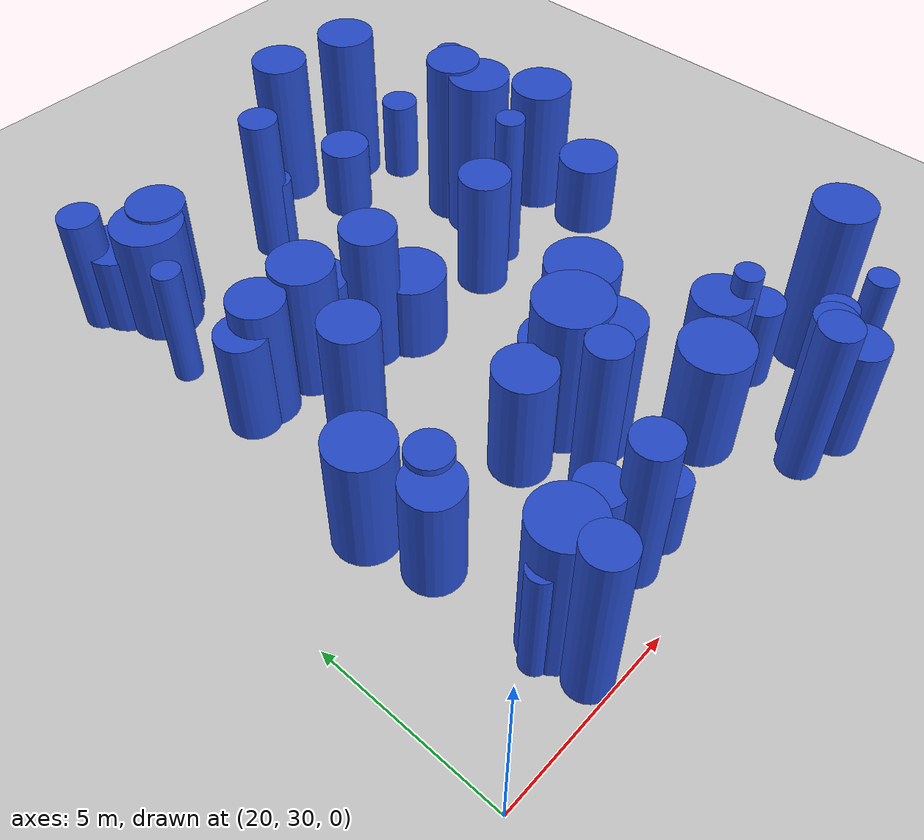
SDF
<sdf version="1.6">
 <world name="default">
  <model name="ground_plane">
   <static>1</static>
   <link name="link">
    <collision name="collision">
     <geometry><plane><normal>0 0 1</normal><size>100 100</size></plane></geometry>
     <surface><friction><ode><mu>100</mu><mu2>50</mu2></ode></friction></surface>
    </collision>
    <visual name="visual">
     <cast_shadows>0</cast_shadows>
     <geometry><plane><normal>0 0 1</normal><size>100 100</size></plane></geometry>
     <material>
      <script><uri>file://media/materials/scripts/gazebo.material</uri><name>Gazebo/Grey</name></script>
     </material>
    </visual>
   </link>
  </model>
  <model name="9">
   <static>0</static>
   <link name="link">
    <inertial>
     <mass>2</mass>
     <inertia><ixx>2.17214</ixx><ixy>0</ixy><ixz>0</ixz><iyy>2.17214</iyy><iyz>0</iyz><izz>0.825516</izz></inertia>
    </inertial>
    <collision name="collision">
     <geometry><cylinder><length>3.24904</length><radius>0.908579</radius></cylinder></geometry>
     <surface><contact><collide_without_contact>1</collide_without_contact></contact></surface>
    </collision>
    <visual name="visual">
     <geometry><cylinder><length>3.24904</length><radius>0.908579</radius></cylinder></geometry>
     <material>
      <script><uri>file://media/materials/scripts/gazebo.material</uri><name>Gazebo/Blue</name></script>
     </material>
    </visual>
    <gravity>0</gravity>
   </link>
   <pose>30.0928 32.4885 1.62452 0 -0 0</pose>
  </model>
  <model name="17">
   <static>0</static>
   <link name="link">
    <inertial>
     <mass>2</mass>
     <inertia><ixx>2.21319</ixx><ixy>0</ixy><ixz>0</ixz><iyy>2.21319</iyy><iyz>0</iyz><izz>0.160005</izz></inertia>
    </inertial>
    <collision name="collision">
     <geometry><cylinder><length>3.57759</length><radius>0.400007</radius></cylinder></geometry>
     <surface><contact><collide_without_contact>1</collide_without_contact></contact></surface>
    </collision>
    <visual name="visual">
     <geometry><cylinder><length>3.57759</length><radius>0.400007</radius></cylinder></geometry>
     <material>
      <script><uri>file://media/materials/scripts/gazebo.material</uri><name>Gazebo/Blue</name></script>
     </material>
    </visual>
    <gravity>0</gravity>
   </link>
   <pose>34.8299 44.982 1.78879 0 -0 0</pose>
  </model>
  <model name="32">
   <static>0</static>
   <link name="link">
    <inertial>
     <mass>2</mass>
     <inertia><ixx>3.68543</ixx><ixy>0</ixy><ixz>0</ixz><iyy>3.68543</iyy><iyz>0</iyz><izz>0.263178</izz></inertia>
    </inertial>
    <collision name="collision">
     <geometry><cylinder><length>4.61769</length><radius>0.513009</radius></cylinder></geometry>
     <surface><contact><collide_without_contact>1</collide_without_contact></contact></surface>
    </collision>
    <visual name="visual">
     <geometry><cylinder><length>4.61769</length><radius>0.513009</radius></cylinder></geometry>
     <material>
      <script><uri>file://media/materials/scripts/gazebo.material</uri><name>Gazebo/Blue</name></script>
     </material>
    </visual>
    <gravity>0</gravity>
   </link>
   <pose>31.0444 30.2874 2.30884 0 -0 0</pose>
  </model>
  <model name="36">
   <static>0</static>
   <link name="link">
    <inertial>
     <mass>2</mass>
     <inertia><ixx>1.95658</ixx><ixy>0</ixy><ixz>0</ixz><iyy>1.95658</iyy><iyz>0</iyz><izz>0.315427</izz></inertia>
    </inertial>
    <collision name="collision">
     <geometry><cylinder><length>3.2853</length><radius>0.561629</radius></cylinder></geometry>
     <surface><contact><collide_without_contact>1</collide_without_contact></contact></surface>
    </collision>
    <visual name="visual">
     <geometry><cylinder><length>3.2853</length><radius>0.561629</radius></cylinder></geometry>
     <material>
      <script><uri>file://media/materials/scripts/gazebo.material</uri><name>Gazebo/Blue</name></script>
     </material>
    </visual>
    <gravity>0</gravity>
   </link>
   <pose>23.5459 35.1984 1.64265 0 -0 0</pose>
  </model>
  <model name="41">
   <static>0</static>
   <link name="link">
    <inertial>
     <mass>2</mass>
     <inertia><ixx>1.76334</ixx><ixy>0</ixy><ixz>0</ixz><iyy>1.76334</iyy><iyz>0</iyz><izz>0.124496</izz></inertia>
    </inertial>
    <collision name="collision">
     <geometry><cylinder><length>3.19477</length><radius>0.352839</radius></cylinder></geometry>
     <surface><contact><collide_without_contact>1</collide_without_contact></contact></surface>
    </collision>
    <visual name="visual">
     <geometry><cylinder><length>3.19477</length><radius>0.352839</radius></cylinder></geometry>
     <material>
      <script><uri>file://media/materials/scripts/gazebo.material</uri><name>Gazebo/Blue</name></script>
     </material>
    </visual>
    <gravity>0</gravity>
   </link>
   <pose>23.6952 31.2859 1.59739 0 -0 0</pose>
  </model>
  <model name="47">
   <static>0</static>
   <link name="link">
    <inertial>
     <mass>2</mass>
     <inertia><ixx>3.56288</ixx><ixy>0</ixy><ixz>0</ixz><iyy>3.56288</iyy><iyz>0</iyz><izz>0.679619</izz></inertia>
    </inertial>
    <collision name="collision">
     <geometry><cylinder><length>4.39755</length><radius>0.82439</radius></cylinder></geometry>
     <surface><contact><collide_without_contact>1</collide_without_contact></contact></surface>
    </collision>
    <visual name="visual">
     <geometry><cylinder><length>4.39755</length><radius>0.82439</radius></cylinder></geometry>
     <material>
      <script><uri>file://media/materials/scripts/gazebo.material</uri><name>Gazebo/Blue</name></script>
     </material>
    </visual>
    <gravity>0</gravity>
   </link>
   <pose>23.4584 31.6278 2.19877 0 -0 0</pose>
  </model>
  <model name="53">
   <static>0</static>
   <link name="link">
    <inertial>
     <mass>2</mass>
     <inertia><ixx>2.77457</ixx><ixy>0</ixy><ixz>0</ixz><iyy>2.77457</iyy><iyz>0</iyz><izz>0.892205</izz></inertia>
    </inertial>
    <collision name="collision">
     <geometry><cylinder><length>3.73775</length><radius>0.944566</radius></cylinder></geometry>
     <surface><contact><collide_without_contact>1</collide_without_contact></contact></surface>
    </collision>
    <visual name="visual">
     <geometry><cylinder><length>3.73775</length><radius>0.944566</radius></cylinder></geometry>
     <material>
      <script><uri>file://media/materials/scripts/gazebo.material</uri><name>Gazebo/Blue</name></script>
     </material>
    </visual>
    <gravity>0</gravity>
   </link>
   <pose>29.7969 36.1188 1.86888 0 -0 0</pose>
  </model>
  <model name="55">
   <static>0</static>
   <link name="link">
    <inertial>
     <mass>2</mass>
     <inertia><ixx>2.46445</ixx><ixy>0</ixy><ixz>0</ixz><iyy>2.46445</iyy><iyz>0</iyz><izz>0.129583</izz></inertia>
    </inertial>
    <collision name="collision">
     <geometry><cylinder><length>3.79446</length><radius>0.359977</radius></cylinder></geometry>
     <surface><contact><collide_without_contact>1</collide_without_contact></contact></surface>
    </collision>
    <visual name="visual">
     <geometry><cylinder><length>3.79446</length><radius>0.359977</radius></cylinder></geometry>
     <material>
      <script><uri>file://media/materials/scripts/gazebo.material</uri><name>Gazebo/Blue</name></script>
     </material>
    </visual>
    <gravity>0</gravity>
   </link>
   <pose>32.0939 33.0185 1.89723 0 -0 0</pose>
  </model>
  <model name="71">
   <static>0</static>
   <link name="link">
    <inertial>
     <mass>2</mass>
     <inertia><ixx>1.25615</ixx><ixy>0</ixy><ixz>0</ixz><iyy>1.25615</iyy><iyz>0</iyz><izz>0.836986</izz></inertia>
    </inertial>
    <collision name="collision">
     <geometry><cylinder><length>2.24185</length><radius>0.914869</radius></cylinder></geometry>
     <surface><contact><collide_without_contact>1</collide_without_contact></contact></surface>
    </collision>
    <visual name="visual">
     <geometry><cylinder><length>2.24185</length><radius>0.914869</radius></cylinder></geometry>
     <material>
      <script><uri>file://media/materials/scripts/gazebo.material</uri><name>Gazebo/Blue</name></script>
     </material>
    </visual>
    <gravity>0</gravity>
   </link>
   <pose>28.0409 40.0976 1.12093 0 -0 0</pose>
  </model>
  <model name="77">
   <static>0</static>
   <link name="link">
    <inertial>
     <mass>2</mass>
     <inertia><ixx>1.8782</ixx><ixy>0</ixy><ixz>0</ixz><iyy>1.8782</iyy><iyz>0</iyz><izz>0.551457</izz></inertia>
    </inertial>
    <collision name="collision">
     <geometry><cylinder><length>3.10077</length><radius>0.742602</radius></cylinder></geometry>
     <surface><contact><collide_without_contact>1</collide_without_contact></contact></surface>
    </collision>
    <visual name="visual">
     <geometry><cylinder><length>3.10077</length><radius>0.742602</radius></cylinder></geometry>
     <material>
      <script><uri>file://media/materials/scripts/gazebo.material</uri><name>Gazebo/Blue</name></script>
     </material>
    </visual>
    <gravity>0</gravity>
   </link>
   <pose>23.0701 34.6715 1.55039 0 -0 0</pose>
  </model>
  <model name="88">
   <static>0</static>
   <link name="link">
    <inertial>
     <mass>2</mass>
     <inertia><ixx>1.25112</ixx><ixy>0</ixy><ixz>0</ixz><iyy>1.25112</iyy><iyz>0</iyz><izz>0.64833</izz></inertia>
    </inertial>
    <collision name="collision">
     <geometry><cylinder><length>2.35833</length><radius>0.805189</radius></cylinder></geometry>
     <surface><contact><collide_without_contact>1</collide_without_contact></contact></surface>
    </collision>
    <visual name="visual">
     <geometry><cylinder><length>2.35833</length><radius>0.805189</radius></cylinder></geometry>
     <material>
      <script><uri>file://media/materials/scripts/gazebo.material</uri><name>Gazebo/Blue</name></script>
     </material>
    </visual>
    <gravity>0</gravity>
   </link>
   <pose>29.3432 35.7119 1.17916 0 -0 0</pose>
  </model>
  <model name="94">
   <static>0</static>
   <link name="link">
    <inertial>
     <mass>2</mass>
     <inertia>
      <ixx>2.38254</ixx>
      <ixy>0</ixy>
      <ixz>0</ixz>
      <iyy>2.38254</iyy>
      <iyz>0</iyz>
      <izz>0.0875542</izz>
     </inertia>
    </inertial>
    <collision name="collision">
     <geometry><cylinder><length>3.74601</length><radius>0.295896</radius></cylinder></geometry>
     <surface><contact><collide_without_contact>1</collide_without_contact></contact></surface>
    </collision>
    <visual name="visual">
     <geometry><cylinder><length>3.74601</length><radius>0.295896</radius></cylinder></geometry>
     <material>
      <script><uri>file://media/materials/scripts/gazebo.material</uri><name>Gazebo/Blue</name></script>
     </material>
    </visual>
    <gravity>0</gravity>
   </link>
   <pose>32.8739 46.9525 1.87301 0 -0 0</pose>
  </model>
  <model name="101">
   <static>0</static>
   <link name="link">
    <inertial>
     <mass>2</mass>
     <inertia>
      <ixx>0.990845</ixx>
      <ixy>0</ixy>
      <ixz>0</ixz>
      <iyy>0.990845</iyy>
      <iyz>0</iyz>
      <izz>0.469471</izz>
     </inertia>
    </inertial>
    <collision name="collision">
     <geometry><cylinder><length>2.12994</length><radius>0.68518</radius></cylinder></geometry>
     <surface><contact><collide_without_contact>1</collide_without_contact></contact></surface>
    </collision>
    <visual name="visual">
     <geometry><cylinder><length>2.12994</length><radius>0.68518</radius></cylinder></geometry>
     <material>
      <script><uri>file://media/materials/scripts/gazebo.material</uri><name>Gazebo/Blue</name></script>
     </material>
    </visual>
    <gravity>0</gravity>
   </link>
   <pose>30.7646 45.382 1.06497 0 -0 0</pose>
  </model>
  <model name="122">
   <static>0</static>
   <link name="link">
    <inertial>
     <mass>2</mass>
     <inertia><ixx>0.85917</ixx><ixy>0</ixy><ixz>0</ixz><iyy>0.85917</iyy><iyz>0</iyz><izz>0.253446</izz></inertia>
    </inertial>
    <collision name="collision">
     <geometry><cylinder><length>2.09635</length><radius>0.503434</radius></cylinder></geometry>
     <surface><contact><collide_without_contact>1</collide_without_contact></contact></surface>
    </collision>
    <visual name="visual">
     <geometry><cylinder><length>2.09635</length><radius>0.503434</radius></cylinder></geometry>
     <material>
      <script><uri>file://media/materials/scripts/gazebo.material</uri><name>Gazebo/Blue</name></script>
     </material>
    </visual>
    <gravity>0</gravity>
   </link>
   <pose>27.112 31.4835 1.04817 0 -0 0</pose>
  </model>
  <model name="128">
   <static>0</static>
   <link name="link">
    <inertial>
     <mass>2</mass>
     <inertia><ixx>3.73478</ixx><ixy>0</ixy><ixz>0</ixz><iyy>3.73478</iyy><iyz>0</iyz><izz>0.491925</izz></inertia>
    </inertial>
    <collision name="collision">
     <geometry><cylinder><length>4.57525</length><radius>0.701374</radius></cylinder></geometry>
     <surface><contact><collide_without_contact>1</collide_without_contact></contact></surface>
    </collision>
    <visual name="visual">
     <geometry><cylinder><length>4.57525</length><radius>0.701374</radius></cylinder></geometry>
     <material>
      <script><uri>file://media/materials/scripts/gazebo.material</uri><name>Gazebo/Blue</name></script>
     </material>
    </visual>
    <gravity>0</gravity>
   </link>
   <pose>24.164 38.1173 2.28762 0 -0 0</pose>
  </model>
  <model name="157">
   <static>0</static>
   <link name="link">
    <inertial>
     <mass>2</mass>
     <inertia><ixx>1.63725</ixx><ixy>0</ixy><ixz>0</ixz><iyy>1.63725</iyy><iyz>0</iyz><izz>0.375015</izz></inertia>
    </inertial>
    <collision name="collision">
     <geometry><cylinder><length>2.94932</length><radius>0.612385</radius></cylinder></geometry>
     <surface><contact><collide_without_contact>1</collide_without_contact></contact></surface>
    </collision>
    <visual name="visual">
     <geometry><cylinder><length>2.94932</length><radius>0.612385</radius></cylinder></geometry>
     <material>
      <script><uri>file://media/materials/scripts/gazebo.material</uri><name>Gazebo/Blue</name></script>
     </material>
    </visual>
    <gravity>0</gravity>
   </link>
   <pose>25.42 32.1685 1.47466 0 -0 0</pose>
  </model>
  <model name="172">
   <static>0</static>
   <link name="link">
    <inertial>
     <mass>2</mass>
     <inertia><ixx>2.75287</ixx><ixy>0</ixy><ixz>0</ixz><iyy>2.75287</iyy><iyz>0</iyz><izz>0.722519</izz></inertia>
    </inertial>
    <collision name="collision">
     <geometry><cylinder><length>3.78809</length><radius>0.850011</radius></cylinder></geometry>
     <surface><contact><collide_without_contact>1</collide_without_contact></contact></surface>
    </collision>
    <visual name="visual">
     <geometry><cylinder><length>3.78809</length><radius>0.850011</radius></cylinder></geometry>
     <material>
      <script><uri>file://media/materials/scripts/gazebo.material</uri><name>Gazebo/Blue</name></script>
     </material>
    </visual>
    <gravity>0</gravity>
   </link>
   <pose>34.9871 41.6125 1.89405 0 -0 0</pose>
  </model>
  <model name="175">
   <static>0</static>
   <link name="link">
    <inertial>
     <mass>2</mass>
     <inertia><ixx>2.14915</ixx><ixy>0</ixy><ixz>0</ixz><iyy>2.14915</iyy><iyz>0</iyz><izz>0.591369</izz></inertia>
    </inertial>
    <collision name="collision">
     <geometry><cylinder><length>3.33479</length><radius>0.769005</radius></cylinder></geometry>
     <surface><contact><collide_without_contact>1</collide_without_contact></contact></surface>
    </collision>
    <visual name="visual">
     <geometry><cylinder><length>3.33479</length><radius>0.769005</radius></cylinder></geometry>
     <material>
      <script><uri>file://media/materials/scripts/gazebo.material</uri><name>Gazebo/Blue</name></script>
     </material>
    </visual>
    <gravity>0</gravity>
   </link>
   <pose>24.633 45.8262 1.66739 0 -0 0</pose>
  </model>
  <model name="178">
   <static>0</static>
   <link name="link">
    <inertial>
     <mass>2</mass>
     <inertia><ixx>3.45321</ixx><ixy>0</ixy><ixz>0</ixz><iyy>3.45321</iyy><iyz>0</iyz><izz>0.929013</izz></inertia>
    </inertial>
    <collision name="collision">
     <geometry><cylinder><length>4.23465</length><radius>0.963853</radius></cylinder></geometry>
     <surface><contact><collide_without_contact>1</collide_without_contact></contact></surface>
    </collision>
    <visual name="visual">
     <geometry><cylinder><length>4.23465</length><radius>0.963853</radius></cylinder></geometry>
     <material>
      <script><uri>file://media/materials/scripts/gazebo.material</uri><name>Gazebo/Blue</name></script>
     </material>
    </visual>
    <gravity>0</gravity>
   </link>
   <pose>28.2389 35.2166 2.11732 0 -0 0</pose>
  </model>
  <model name="202">
   <static>0</static>
   <link name="link">
    <inertial>
     <mass>2</mass>
     <inertia><ixx>3.10348</ixx><ixy>0</ixy><ixz>0</ixz><iyy>3.10348</iyy><iyz>0</iyz><izz>0.510542</izz></inertia>
    </inertial>
    <collision name="collision">
     <geometry><cylinder><length>4.13391</length><radius>0.714522</radius></cylinder></geometry>
     <surface><contact><collide_without_contact>1</collide_without_contact></contact></surface>
    </collision>
    <visual name="visual">
     <geometry><cylinder><length>4.13391</length><radius>0.714522</radius></cylinder></geometry>
     <material>
      <script><uri>file://media/materials/scripts/gazebo.material</uri><name>Gazebo/Blue</name></script>
     </material>
    </visual>
    <gravity>0</gravity>
   </link>
   <pose>26.9826 40.4433 2.06696 0 -0 0</pose>
  </model>
  <model name="203">
   <static>0</static>
   <link name="link">
    <inertial>
     <mass>2</mass>
     <inertia><ixx>2.72551</ixx><ixy>0</ixy><ixz>0</ixz><iyy>2.72551</iyy><iyz>0</iyz><izz>0.670454</izz></inertia>
    </inertial>
    <collision name="collision">
     <geometry><cylinder><length>3.78705</length><radius>0.818813</radius></cylinder></geometry>
     <surface><contact><collide_without_contact>1</collide_without_contact></contact></surface>
    </collision>
    <visual name="visual">
     <geometry><cylinder><length>3.78705</length><radius>0.818813</radius></cylinder></geometry>
     <material>
      <script><uri>file://media/materials/scripts/gazebo.material</uri><name>Gazebo/Blue</name></script>
     </material>
    </visual>
    <gravity>0</gravity>
   </link>
   <pose>25.2855 40.9859 1.89352 0 -0 0</pose>
  </model>
  <model name="205">
   <static>0</static>
   <link name="link">
    <inertial>
     <mass>2</mass>
     <inertia><ixx>1.55831</ixx><ixy>0</ixy><ixz>0</ixz><iyy>1.55831</iyy><iyz>0</iyz><izz>0.533917</izz></inertia>
    </inertial>
    <collision name="collision">
     <geometry><cylinder><length>2.78354</length><radius>0.730696</radius></cylinder></geometry>
     <surface><contact><collide_without_contact>1</collide_without_contact></contact></surface>
    </collision>
    <visual name="visual">
     <geometry><cylinder><length>2.78354</length><radius>0.730696</radius></cylinder></geometry>
     <material>
      <script><uri>file://media/materials/scripts/gazebo.material</uri><name>Gazebo/Blue</name></script>
     </material>
    </visual>
    <gravity>0</gravity>
   </link>
   <pose>25.9609 41.1948 1.39177 0 -0 0</pose>
  </model>
  <model name="209">
   <static>0</static>
   <link name="link">
    <inertial>
     <mass>2</mass>
     <inertia><ixx>0.71511</ixx><ixy>0</ixy><ixz>0</ixz><iyy>0.71511</iyy><iyz>0</iyz><izz>0.086054</izz></inertia>
    </inertial>
    <collision name="collision">
     <geometry><cylinder><length>2.00811</length><radius>0.29335</radius></cylinder></geometry>
     <surface><contact><collide_without_contact>1</collide_without_contact></contact></surface>
    </collision>
    <visual name="visual">
     <geometry><cylinder><length>2.00811</length><radius>0.29335</radius></cylinder></geometry>
     <material>
      <script><uri>file://media/materials/scripts/gazebo.material</uri><name>Gazebo/Blue</name></script>
     </material>
    </visual>
    <gravity>0</gravity>
   </link>
   <pose>34.8444 44.496 1.00405 0 -0 0</pose>
  </model>
  <model name="217">
   <static>0</static>
   <link name="link">
    <inertial>
     <mass>2</mass>
     <inertia><ixx>4.38609</ixx><ixy>0</ixy><ixz>0</ixz><iyy>4.38609</iyy><iyz>0</iyz><izz>0.511184</izz></inertia>
    </inertial>
    <collision name="collision">
     <geometry><cylinder><length>4.97825</length><radius>0.714971</radius></cylinder></geometry>
     <surface><contact><collide_without_contact>1</collide_without_contact></contact></surface>
    </collision>
    <visual name="visual">
     <geometry><cylinder><length>4.97825</length><radius>0.714971</radius></cylinder></geometry>
     <material>
      <script><uri>file://media/materials/scripts/gazebo.material</uri><name>Gazebo/Blue</name></script>
     </material>
    </visual>
    <gravity>0</gravity>
   </link>
   <pose>32.816 43.0186 2.48913 0 -0 0</pose>
  </model>
  <model name="234">
   <static>0</static>
   <link name="link">
    <inertial>
     <mass>2</mass>
     <inertia><ixx>3.28474</ixx><ixy>0</ixy><ixz>0</ixz><iyy>3.28474</iyy><iyz>0</iyz><izz>0.269996</izz></inertia>
    </inertial>
    <collision name="collision">
     <geometry><cylinder><length>4.34723</length><radius>0.519611</radius></cylinder></geometry>
     <surface><contact><collide_without_contact>1</collide_without_contact></contact></surface>
    </collision>
    <visual name="visual">
     <geometry><cylinder><length>4.34723</length><radius>0.519611</radius></cylinder></geometry>
     <material>
      <script><uri>file://media/materials/scripts/gazebo.material</uri><name>Gazebo/Blue</name></script>
     </material>
    </visual>
    <gravity>0</gravity>
   </link>
   <pose>27.9701 45.538 2.17362 0 -0 0</pose>
  </model>
  <model name="264">
   <static>0</static>
   <link name="link">
    <inertial>
     <mass>2</mass>
     <inertia><ixx>3.14359</ixx><ixy>0</ixy><ixz>0</ixz><iyy>3.14359</iyy><iyz>0</iyz><izz>0.609297</izz></inertia>
    </inertial>
    <collision name="collision">
     <geometry><cylinder><length>4.12718</length><radius>0.780575</radius></cylinder></geometry>
     <surface><contact><collide_without_contact>1</collide_without_contact></contact></surface>
    </collision>
    <visual name="visual">
     <geometry><cylinder><length>4.12718</length><radius>0.780575</radius></cylinder></geometry>
     <material>
      <script><uri>file://media/materials/scripts/gazebo.material</uri><name>Gazebo/Blue</name></script>
     </material>
    </visual>
    <gravity>0</gravity>
   </link>
   <pose>28.4073 34.23 2.06359 0 -0 0</pose>
  </model>
  <model name="272">
   <static>0</static>
   <link name="link">
    <inertial>
     <mass>2</mass>
     <inertia><ixx>1.13346</ixx><ixy>0</ixy><ixz>0</ixz><iyy>1.13346</iyy><iyz>0</iyz><izz>0.697418</izz></inertia>
    </inertial>
    <collision name="collision">
     <geometry><cylinder><length>2.16991</length><radius>0.835115</radius></cylinder></geometry>
     <surface><contact><collide_without_contact>1</collide_without_contact></contact></surface>
    </collision>
    <visual name="visual">
     <geometry><cylinder><length>2.16991</length><radius>0.835115</radius></cylinder></geometry>
     <material>
      <script><uri>file://media/materials/scripts/gazebo.material</uri><name>Gazebo/Blue</name></script>
     </material>
    </visual>
    <gravity>0</gravity>
   </link>
   <pose>35.0149 39.7969 1.08495 0 -0 0</pose>
  </model>
  <model name="273">
   <static>0</static>
   <link name="link">
    <inertial>
     <mass>2</mass>
     <inertia><ixx>2.21963</ixx><ixy>0</ixy><ixz>0</ixz><iyy>2.21963</iyy><iyz>0</iyz><izz>0.688123</izz></inertia>
    </inertial>
    <collision name="collision">
     <geometry><cylinder><length>3.35461</length><radius>0.829532</radius></cylinder></geometry>
     <surface><contact><collide_without_contact>1</collide_without_contact></contact></surface>
    </collision>
    <visual name="visual">
     <geometry><cylinder><length>3.35461</length><radius>0.829532</radius></cylinder></geometry>
     <material>
      <script><uri>file://media/materials/scripts/gazebo.material</uri><name>Gazebo/Blue</name></script>
     </material>
    </visual>
    <gravity>0</gravity>
   </link>
   <pose>22.6849 36.378 1.67731 0 -0 0</pose>
  </model>
  <model name="296">
   <static>0</static>
   <link name="link">
    <inertial>
     <mass>2</mass>
     <inertia><ixx>3.60598</ixx><ixy>0</ixy><ixz>0</ixz><iyy>3.60598</iyy><iyz>0</iyz><izz>0.150347</izz></inertia>
    </inertial>
    <collision name="collision">
     <geometry><cylinder><length>4.6027</length><radius>0.387746</radius></cylinder></geometry>
     <surface><contact><collide_without_contact>1</collide_without_contact></contact></surface>
    </collision>
    <visual name="visual">
     <geometry><cylinder><length>4.6027</length><radius>0.387746</radius></cylinder></geometry>
     <material>
      <script><uri>file://media/materials/scripts/gazebo.material</uri><name>Gazebo/Blue</name></script>
     </material>
    </visual>
    <gravity>0</gravity>
   </link>
   <pose>32.1855 40.4181 2.30135 0 -0 0</pose>
  </model>
  <model name="315">
   <static>0</static>
   <link name="link">
    <inertial>
     <mass>2</mass>
     <inertia><ixx>2.10453</ixx><ixy>0</ixy><ixz>0</ixz><iyy>2.10453</iyy><iyz>0</iyz><izz>0.607323</izz></inertia>
    </inertial>
    <collision name="collision">
     <geometry><cylinder><length>3.28713</length><radius>0.77931</radius></cylinder></geometry>
     <surface><contact><collide_without_contact>1</collide_without_contact></contact></surface>
    </collision>
    <visual name="visual">
     <geometry><cylinder><length>3.28713</length><radius>0.77931</radius></cylinder></geometry>
     <material>
      <script><uri>file://media/materials/scripts/gazebo.material</uri><name>Gazebo/Blue</name></script>
     </material>
    </visual>
    <gravity>0</gravity>
   </link>
   <pose>26.62 35.1973 1.64356 0 -0 0</pose>
  </model>
  <model name="323">
   <static>0</static>
   <link name="link">
    <inertial>
     <mass>2</mass>
     <inertia><ixx>1.1847</ixx><ixy>0</ixy><ixz>0</ixz><iyy>1.1847</iyy><iyz>0</iyz><izz>0.309535</izz></inertia>
    </inertial>
    <collision name="collision">
     <geometry><cylinder><length>2.48587</length><radius>0.556359</radius></cylinder></geometry>
     <surface><contact><collide_without_contact>1</collide_without_contact></contact></surface>
    </collision>
    <visual name="visual">
     <geometry><cylinder><length>2.48587</length><radius>0.556359</radius></cylinder></geometry>
     <material>
      <script><uri>file://media/materials/scripts/gazebo.material</uri><name>Gazebo/Blue</name></script>
     </material>
    </visual>
    <gravity>0</gravity>
   </link>
   <pose>32.8163 32.7947 1.24294 0 -0 0</pose>
  </model>
  <model name="326">
   <static>0</static>
   <link name="link">
    <inertial>
     <mass>2</mass>
     <inertia><ixx>2.50047</ixx><ixy>0</ixy><ixz>0</ixz><iyy>2.50047</iyy><iyz>0</iyz><izz>0.512412</izz></inertia>
    </inertial>
    <collision name="collision">
     <geometry><cylinder><length>3.66955</length><radius>0.715829</radius></cylinder></geometry>
     <surface><contact><collide_without_contact>1</collide_without_contact></contact></surface>
    </collision>
    <visual name="visual">
     <geometry><cylinder><length>3.66955</length><radius>0.715829</radius></cylinder></geometry>
     <material>
      <script><uri>file://media/materials/scripts/gazebo.material</uri><name>Gazebo/Blue</name></script>
     </material>
    </visual>
    <gravity>0</gravity>
   </link>
   <pose>23.8476 40.9403 1.83478 0 -0 0</pose>
  </model>
  <model name="329">
   <static>0</static>
   <link name="link">
    <inertial>
     <mass>2</mass>
     <inertia><ixx>4.33352</ixx><ixy>0</ixy><ixz>0</ixz><iyy>4.33352</iyy><iyz>0</iyz><izz>0.682214</izz></inertia>
    </inertial>
    <collision name="collision">
     <geometry><cylinder><length>4.89433</length><radius>0.825963</radius></cylinder></geometry>
     <surface><contact><collide_without_contact>1</collide_without_contact></contact></surface>
    </collision>
    <visual name="visual">
     <geometry><cylinder><length>4.89433</length><radius>0.825963</radius></cylinder></geometry>
     <material>
      <script><uri>file://media/materials/scripts/gazebo.material</uri><name>Gazebo/Blue</name></script>
     </material>
    </visual>
    <gravity>0</gravity>
   </link>
   <pose>32.8185 42.0839 2.44717 0 -0 0</pose>
  </model>
  <model name="337">
   <static>0</static>
   <link name="link">
    <inertial>
     <mass>2</mass>
     <inertia><ixx>2.04331</ixx><ixy>0</ixy><ixz>0</ixz><iyy>2.04331</iyy><iyz>0</iyz><izz>0.5535</izz></inertia>
    </inertial>
    <collision name="collision">
     <geometry><cylinder><length>3.25567</length><radius>0.743976</radius></cylinder></geometry>
     <surface><contact><collide_without_contact>1</collide_without_contact></contact></surface>
    </collision>
    <visual name="visual">
     <geometry><cylinder><length>3.25567</length><radius>0.743976</radius></cylinder></geometry>
     <material>
      <script><uri>file://media/materials/scripts/gazebo.material</uri><name>Gazebo/Blue</name></script>
     </material>
    </visual>
    <gravity>0</gravity>
   </link>
   <pose>31.5651 33.3166 1.62784 0 -0 0</pose>
  </model>
  <model name="340">
   <static>0</static>
   <link name="link">
    <inertial>
     <mass>2</mass>
     <inertia><ixx>2.00319</ixx><ixy>0</ixy><ixz>0</ixz><iyy>2.00319</iyy><iyz>0</iyz><izz>0.397957</izz></inertia>
    </inertial>
    <collision name="collision">
     <geometry><cylinder><length>3.29018</length><radius>0.630838</radius></cylinder></geometry>
     <surface><contact><collide_without_contact>1</collide_without_contact></contact></surface>
    </collision>
    <visual name="visual">
     <geometry><cylinder><length>3.29018</length><radius>0.630838</radius></cylinder></geometry>
     <material>
      <script><uri>file://media/materials/scripts/gazebo.material</uri><name>Gazebo/Blue</name></script>
     </material>
    </visual>
    <gravity>0</gravity>
   </link>
   <pose>32.3569 30.0811 1.64509 0 -0 0</pose>
  </model>
  <model name="343">
   <static>0</static>
   <link name="link">
    <inertial>
     <mass>2</mass>
     <inertia><ixx>2.56725</ixx><ixy>0</ixy><ixz>0</ixz><iyy>2.56725</iyy><iyz>0</iyz><izz>0.210444</izz></inertia>
    </inertial>
    <collision name="collision">
     <geometry><cylinder><length>3.84346</length><radius>0.458742</radius></cylinder></geometry>
     <surface><contact><collide_without_contact>1</collide_without_contact></contact></surface>
    </collision>
    <visual name="visual">
     <geometry><cylinder><length>3.84346</length><radius>0.458742</radius></cylinder></geometry>
     <material>
      <script><uri>file://media/materials/scripts/gazebo.material</uri><name>Gazebo/Blue</name></script>
     </material>
    </visual>
    <gravity>0</gravity>
   </link>
   <pose>32.3847 30.8606 1.92173 0 -0 0</pose>
  </model>
  <model name="351">
   <static>0</static>
   <link name="link">
    <inertial>
     <mass>2</mass>
     <inertia><ixx>3.00387</ixx><ixy>0</ixy><ixz>0</ixz><iyy>3.00387</iyy><iyz>0</iyz><izz>0.264907</izz></inertia>
    </inertial>
    <collision name="collision">
     <geometry><cylinder><length>4.15072</length><radius>0.514691</radius></cylinder></geometry>
     <surface><contact><collide_without_contact>1</collide_without_contact></contact></surface>
    </collision>
    <visual name="visual">
     <geometry><cylinder><length>4.15072</length><radius>0.514691</radius></cylinder></geometry>
     <material>
      <script><uri>file://media/materials/scripts/gazebo.material</uri><name>Gazebo/Blue</name></script>
     </material>
    </visual>
    <gravity>0</gravity>
   </link>
   <pose>31.7085 30.6545 2.07536 0 -0 0</pose>
  </model>
  <model name="355">
   <static>0</static>
   <link name="link">
    <inertial>
     <mass>2</mass>
     <inertia><ixx>3.43469</ixx><ixy>0</ixy><ixz>0</ixz><iyy>3.43469</iyy><iyz>0</iyz><izz>0.329364</izz></inertia>
    </inertial>
    <collision name="collision">
     <geometry><cylinder><length>4.42945</length><radius>0.573902</radius></cylinder></geometry>
     <surface><contact><collide_without_contact>1</collide_without_contact></contact></surface>
    </collision>
    <visual name="visual">
     <geometry><cylinder><length>4.42945</length><radius>0.573902</radius></cylinder></geometry>
     <material>
      <script><uri>file://media/materials/scripts/gazebo.material</uri><name>Gazebo/Blue</name></script>
     </material>
    </visual>
    <gravity>0</gravity>
   </link>
   <pose>26.0519 31.4616 2.21473 0 -0 0</pose>
  </model>
  <model name="377">
   <static>0</static>
   <link name="link">
    <inertial>
     <mass>2</mass>
     <inertia>
      <ixx>0.967429</ixx>
      <ixy>0</ixy>
      <ixz>0</ixz>
      <iyy>0.967429</iyy>
      <iyz>0</iyz>
      <izz>0.181478</izz>
     </inertia>
    </inertial>
    <collision name="collision">
     <geometry><cylinder><length>2.2935</length><radius>0.426002</radius></cylinder></geometry>
     <surface><contact><collide_without_contact>1</collide_without_contact></contact></surface>
    </collision>
    <visual name="visual">
     <geometry><cylinder><length>2.2935</length><radius>0.426002</radius></cylinder></geometry>
     <material>
      <script><uri>file://media/materials/scripts/gazebo.material</uri><name>Gazebo/Blue</name></script>
     </material>
    </visual>
    <gravity>0</gravity>
   </link>
   <pose>28.2015 45.4392 1.14675 0 -0 0</pose>
  </model>
  <model name="384">
   <static>0</static>
   <link name="link">
    <inertial>
     <mass>2</mass>
     <inertia><ixx>2.39766</ixx><ixy>0</ixy><ixz>0</ixz><iyy>2.39766</iyy><iyz>0</iyz><izz>0.488857</izz></inertia>
    </inertial>
    <collision name="collision">
     <geometry><cylinder><length>3.59435</length><radius>0.699183</radius></cylinder></geometry>
     <surface><contact><collide_without_contact>1</collide_without_contact></contact></surface>
    </collision>
    <visual name="visual">
     <geometry><cylinder><length>3.59435</length><radius>0.699183</radius></cylinder></geometry>
     <material>
      <script><uri>file://media/materials/scripts/gazebo.material</uri><name>Gazebo/Blue</name></script>
     </material>
    </visual>
    <gravity>0</gravity>
   </link>
   <pose>30.9471 40.1961 1.79718 0 -0 0</pose>
  </model>
  <model name="393">
   <static>0</static>
   <link name="link">
    <inertial>
     <mass>2</mass>
     <inertia><ixx>3.98282</ixx><ixy>0</ixy><ixz>0</ixz><iyy>3.98282</iyy><iyz>0</iyz><izz>0.280525</izz></inertia>
    </inertial>
    <collision name="collision">
     <geometry><cylinder><length>4.8016</length><radius>0.529646</radius></cylinder></geometry>
     <surface><contact><collide_without_contact>1</collide_without_contact></contact></surface>
    </collision>
    <visual name="visual">
     <geometry><cylinder><length>4.8016</length><radius>0.529646</radius></cylinder></geometry>
     <material>
      <script><uri>file://media/materials/scripts/gazebo.material</uri><name>Gazebo/Blue</name></script>
     </material>
    </visual>
    <gravity>0</gravity>
   </link>
   <pose>27.2204 33.5344 2.4008 0 -0 0</pose>
  </model>
  <model name="395">
   <static>0</static>
   <link name="link">
    <inertial>
     <mass>2</mass>
     <inertia><ixx>2.09401</ixx><ixy>0</ixy><ixz>0</ixz><iyy>2.09401</iyy><iyz>0</iyz><izz>0.137588</izz></inertia>
    </inertial>
    <collision name="collision">
     <geometry><cylinder><length>3.48587</length><radius>0.370929</radius></cylinder></geometry>
     <surface><contact><collide_without_contact>1</collide_without_contact></contact></surface>
    </collision>
    <visual name="visual">
     <geometry><cylinder><length>3.48587</length><radius>0.370929</radius></cylinder></geometry>
     <material>
      <script><uri>file://media/materials/scripts/gazebo.material</uri><name>Gazebo/Blue</name></script>
     </material>
    </visual>
    <gravity>0</gravity>
   </link>
   <pose>28.5084 46.5463 1.74293 0 -0 0</pose>
  </model>
  <model name="396">
   <static>0</static>
   <link name="link">
    <inertial>
     <mass>2</mass>
     <inertia><ixx>0.94366</ixx><ixy>0</ixy><ixz>0</ixz><iyy>0.94366</iyy><iyz>0</iyz><izz>0.065271</izz></inertia>
    </inertial>
    <collision name="collision">
     <geometry><cylinder><length>2.33798</length><radius>0.255482</radius></cylinder></geometry>
     <surface><contact><collide_without_contact>1</collide_without_contact></contact></surface>
    </collision>
    <visual name="visual">
     <geometry><cylinder><length>2.33798</length><radius>0.255482</radius></cylinder></geometry>
     <material>
      <script><uri>file://media/materials/scripts/gazebo.material</uri><name>Gazebo/Blue</name></script>
     </material>
    </visual>
    <gravity>0</gravity>
   </link>
   <pose>24.9401 32.2654 1.16899 0 -0 0</pose>
  </model>
  <model name="407">
   <static>0</static>
   <link name="link">
    <inertial>
     <mass>2</mass>
     <inertia><ixx>1.12834</ixx><ixy>0</ixy><ixz>0</ixz><iyy>1.12834</iyy><iyz>0</iyz><izz>0.260921</izz></inertia>
    </inertial>
    <collision name="collision">
     <geometry><cylinder><length>2.44689</length><radius>0.510804</radius></cylinder></geometry>
     <surface><contact><collide_without_contact>1</collide_without_contact></contact></surface>
    </collision>
    <visual name="visual">
     <geometry><cylinder><length>2.44689</length><radius>0.510804</radius></cylinder></geometry>
     <material>
      <script><uri>file://media/materials/scripts/gazebo.material</uri><name>Gazebo/Blue</name></script>
     </material>
    </visual>
    <gravity>0</gravity>
   </link>
   <pose>33.0907 45.4302 1.22345 0 -0 0</pose>
  </model>
  <model name="413">
   <static>0</static>
   <link name="link">
    <inertial>
     <mass>2</mass>
     <inertia><ixx>2.11775</ixx><ixy>0</ixy><ixz>0</ixz><iyy>2.11775</iyy><iyz>0</iyz><izz>0.293182</izz></inertia>
    </inertial>
    <collision name="collision">
     <geometry><cylinder><length>3.43904</length><radius>0.541463</radius></cylinder></geometry>
     <surface><contact><collide_without_contact>1</collide_without_contact></contact></surface>
    </collision>
    <visual name="visual">
     <geometry><cylinder><length>3.43904</length><radius>0.541463</radius></cylinder></geometry>
     <material>
      <script><uri>file://media/materials/scripts/gazebo.material</uri><name>Gazebo/Blue</name></script>
     </material>
    </visual>
    <gravity>0</gravity>
   </link>
   <pose>22.9563 46.7304 1.71952 0 -0 0</pose>
  </model>
  <model name="418">
   <static>0</static>
   <link name="link">
    <inertial>
     <mass>2</mass>
     <inertia><ixx>2.22253</ixx><ixy>0</ixy><ixz>0</ixz><iyy>2.22253</iyy><iyz>0</iyz><izz>0.895246</izz></inertia>
    </inertial>
    <collision name="collision">
     <geometry><cylinder><length>3.26335</length><radius>0.946175</radius></cylinder></geometry>
     <surface><contact><collide_without_contact>1</collide_without_contact></contact></surface>
    </collision>
    <visual name="visual">
     <geometry><cylinder><length>3.26335</length><radius>0.946175</radius></cylinder></geometry>
     <material>
      <script><uri>file://media/materials/scripts/gazebo.material</uri><name>Gazebo/Blue</name></script>
     </material>
    </visual>
    <gravity>0</gravity>
   </link>
   <pose>24.0566 45.4408 1.63167 0 -0 0</pose>
  </model>
  <model name="432">
   <static>0</static>
   <link name="link">
    <inertial>
     <mass>2</mass>
     <inertia><ixx>2.09434</ixx><ixy>0</ixy><ixz>0</ixz><iyy>2.09434</iyy><iyz>0</iyz><izz>0.134374</izz></inertia>
    </inertial>
    <collision name="collision">
     <geometry><cylinder><length>3.48754</length><radius>0.36657</radius></cylinder></geometry>
     <surface><contact><collide_without_contact>1</collide_without_contact></contact></surface>
    </collision>
    <visual name="visual">
     <geometry><cylinder><length>3.48754</length><radius>0.36657</radius></cylinder></geometry>
     <material>
      <script><uri>file://media/materials/scripts/gazebo.material</uri><name>Gazebo/Blue</name></script>
     </material>
    </visual>
    <gravity>0</gravity>
   </link>
   <pose>23.1545 43.4012 1.74377 0 -0 0</pose>
  </model>
  <model name="433">
   <static>0</static>
   <link name="link">
    <inertial>
     <mass>2</mass>
     <inertia><ixx>1.75584</ixx><ixy>0</ixy><ixz>0</ixz><iyy>1.75584</iyy><iyz>0</iyz><izz>0.443059</izz></inertia>
    </inertial>
    <collision name="collision">
     <geometry><cylinder><length>3.03411</length><radius>0.665627</radius></cylinder></geometry>
     <surface><contact><collide_without_contact>1</collide_without_contact></contact></surface>
    </collision>
    <visual name="visual">
     <geometry><cylinder><length>3.03411</length><radius>0.665627</radius></cylinder></geometry>
     <material>
      <script><uri>file://media/materials/scripts/gazebo.material</uri><name>Gazebo/Blue</name></script>
     </material>
    </visual>
    <gravity>0</gravity>
   </link>
   <pose>23.2619 40.8715 1.51706 0 -0 0</pose>
  </model>
  <model name="443">
   <static>0</static>
   <link name="link">
    <inertial>
     <mass>2</mass>
     <inertia><ixx>3.85047</ixx><ixy>0</ixy><ixz>0</ixz><iyy>3.85047</iyy><iyz>0</iyz><izz>0.627599</izz></inertia>
    </inertial>
    <collision name="collision">
     <geometry><cylinder><length>4.60652</length><radius>0.792211</radius></cylinder></geometry>
     <surface><contact><collide_without_contact>1</collide_without_contact></contact></surface>
    </collision>
    <visual name="visual">
     <geometry><cylinder><length>4.60652</length><radius>0.792211</radius></cylinder></geometry>
     <material>
      <script><uri>file://media/materials/scripts/gazebo.material</uri><name>Gazebo/Blue</name></script>
     </material>
    </visual>
    <gravity>0</gravity>
   </link>
   <pose>32.2263 46.6576 2.30326 0 -0 0</pose>
  </model>
  <model name="451">
   <static>0</static>
   <link name="link">
    <inertial>
     <mass>2</mass>
     <inertia><ixx>1.24182</ixx><ixy>0</ixy><ixz>0</ixz><iyy>1.24182</iyy><iyz>0</iyz><izz>0.849357</izz></inertia>
    </inertial>
    <collision name="collision">
     <geometry><cylinder><length>2.21423</length><radius>0.921606</radius></cylinder></geometry>
     <surface><contact><collide_without_contact>1</collide_without_contact></contact></surface>
    </collision>
    <visual name="visual">
     <geometry><cylinder><length>2.21423</length><radius>0.921606</radius></cylinder></geometry>
     <material>
      <script><uri>file://media/materials/scripts/gazebo.material</uri><name>Gazebo/Blue</name></script>
     </material>
    </visual>
    <gravity>0</gravity>
   </link>
   <pose>28.6713 35.9035 1.10712 0 -0 0</pose>
  </model>
  <model name="462">
   <static>0</static>
   <link name="link">
    <inertial>
     <mass>2</mass>
     <inertia><ixx>2.03656</ixx><ixy>0</ixy><ixz>0</ixz><iyy>2.03656</iyy><iyz>0</iyz><izz>0.122816</izz></inertia>
    </inertial>
    <collision name="collision">
     <geometry><cylinder><length>3.44252</length><radius>0.350451</radius></cylinder></geometry>
     <surface><contact><collide_without_contact>1</collide_without_contact></contact></surface>
    </collision>
    <visual name="visual">
     <geometry><cylinder><length>3.44252</length><radius>0.350451</radius></cylinder></geometry>
     <material>
      <script><uri>file://media/materials/scripts/gazebo.material</uri><name>Gazebo/Blue</name></script>
     </material>
    </visual>
    <gravity>0</gravity>
   </link>
   <pose>22.8108 31.614 1.72126 0 -0 0</pose>
  </model>
  <model name="475">
   <static>0</static>
   <link name="link">
    <inertial>
     <mass>2</mass>
     <inertia><ixx>4.30712</ixx><ixy>0</ixy><ixz>0</ixz><iyy>4.30712</iyy><iyz>0</iyz><izz>0.607594</izz></inertia>
    </inertial>
    <collision name="collision">
     <geometry><cylinder><length>4.90102</length><radius>0.779483</radius></cylinder></geometry>
     <surface><contact><collide_without_contact>1</collide_without_contact></contact></surface>
    </collision>
    <visual name="visual">
     <geometry><cylinder><length>4.90102</length><radius>0.779483</radius></cylinder></geometry>
     <material>
      <script><uri>file://media/materials/scripts/gazebo.material</uri><name>Gazebo/Blue</name></script>
     </material>
    </visual>
    <gravity>0</gravity>
   </link>
   <pose>34.4678 32.1362 2.45051 0 -0 0</pose>
  </model>
  <model name="484">
   <static>0</static>
   <link name="link">
    <inertial>
     <mass>2</mass>
     <inertia><ixx>1.28029</ixx><ixy>0</ixy><ixz>0</ixz><iyy>1.28029</iyy><iyz>0</iyz><izz>0.732938</izz></inertia>
    </inertial>
    <collision name="collision">
     <geometry><cylinder><length>2.34156</length><radius>0.856118</radius></cylinder></geometry>
     <surface><contact><collide_without_contact>1</collide_without_contact></contact></surface>
    </collision>
    <visual name="visual">
     <geometry><cylinder><length>2.34156</length><radius>0.856118</radius></cylinder></geometry>
     <material>
      <script><uri>file://media/materials/scripts/gazebo.material</uri><name>Gazebo/Blue</name></script>
     </material>
    </visual>
    <gravity>0</gravity>
   </link>
   <pose>23.5666 46.3635 1.17078 0 -0 0</pose>
  </model>
  <model name="487">
   <static>0</static>
   <link name="link">
    <inertial>
     <mass>2</mass>
     <inertia><ixx>3.10431</ixx><ixy>0</ixy><ixz>0</ixz><iyy>3.10431</iyy><iyz>0</iyz><izz>0.126775</izz></inertia>
    </inertial>
    <collision name="collision">
     <geometry><cylinder><length>4.27148</length><radius>0.356054</radius></cylinder></geometry>
     <surface><contact><collide_without_contact>1</collide_without_contact></contact></surface>
    </collision>
    <visual name="visual">
     <geometry><cylinder><length>4.27148</length><radius>0.356054</radius></cylinder></geometry>
     <material>
      <script><uri>file://media/materials/scripts/gazebo.material</uri><name>Gazebo/Blue</name></script>
     </material>
    </visual>
    <gravity>0</gravity>
   </link>
   <pose>33.4455 30.4759 2.13574 0 -0 0</pose>
  </model>
  <model name="488">
   <static>0</static>
   <link name="link">
    <inertial>
     <mass>2</mass>
     <inertia><ixx>3.98671</ixx><ixy>0</ixy><ixz>0</ixz><iyy>3.98671</iyy><iyz>0</iyz><izz>0.324482</izz></inertia>
    </inertial>
    <collision name="collision">
     <geometry><cylinder><length>4.79028</length><radius>0.569633</radius></cylinder></geometry>
     <surface><contact><collide_without_contact>1</collide_without_contact></contact></surface>
    </collision>
    <visual name="visual">
     <geometry><cylinder><length>4.79028</length><radius>0.569633</radius></cylinder></geometry>
     <material>
      <script><uri>file://media/materials/scripts/gazebo.material</uri><name>Gazebo/Blue</name></script>
     </material>
    </visual>
    <gravity>0</gravity>
   </link>
   <pose>23.2536 30.5564 2.39514 0 -0 0</pose>
  </model>
  <model name="490">
   <static>0</static>
   <link name="link">
    <inertial>
     <mass>2</mass>
     <inertia><ixx>3.49085</ixx><ixy>0</ixy><ixz>0</ixz><iyy>3.49085</iyy><iyz>0</iyz><izz>0.58295</izz></inertia>
    </inertial>
    <collision name="collision">
     <geometry><cylinder><length>4.38136</length><radius>0.763512</radius></cylinder></geometry>
     <surface><contact><collide_without_contact>1</collide_without_contact></contact></surface>
    </collision>
    <visual name="visual">
     <geometry><cylinder><length>4.38136</length><radius>0.763512</radius></cylinder></geometry>
     <material>
      <script><uri>file://media/materials/scripts/gazebo.material</uri><name>Gazebo/Blue</name></script>
     </material>
    </visual>
    <gravity>0</gravity>
   </link>
   <pose>30.2319 47.2694 2.19068 0 -0 0</pose>
  </model>
 </world>
</sdf>
